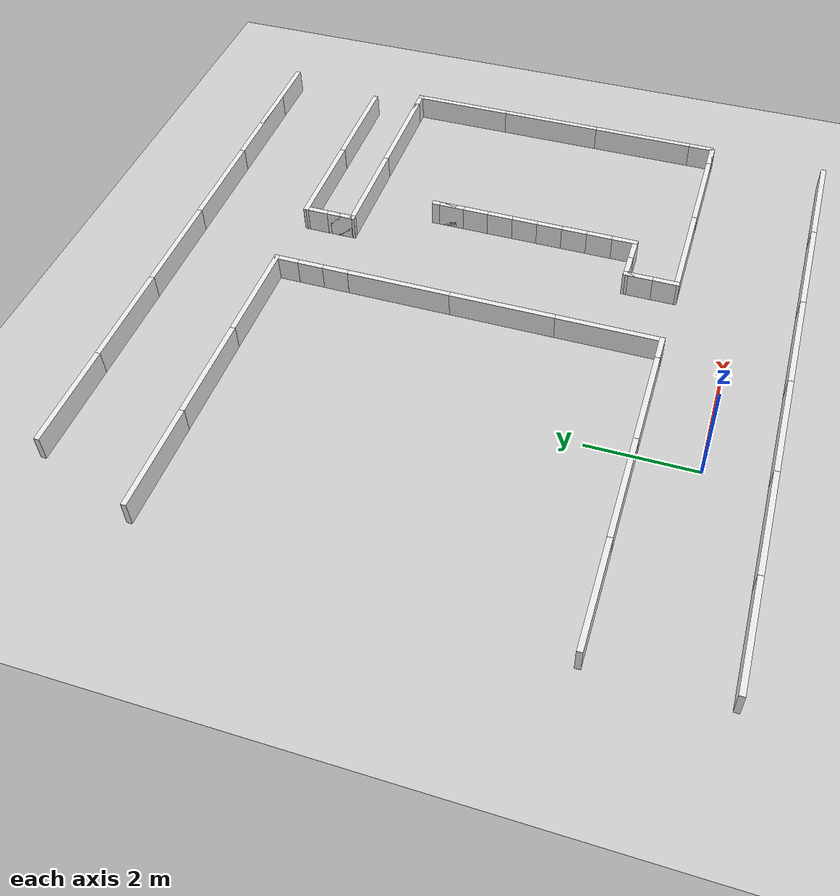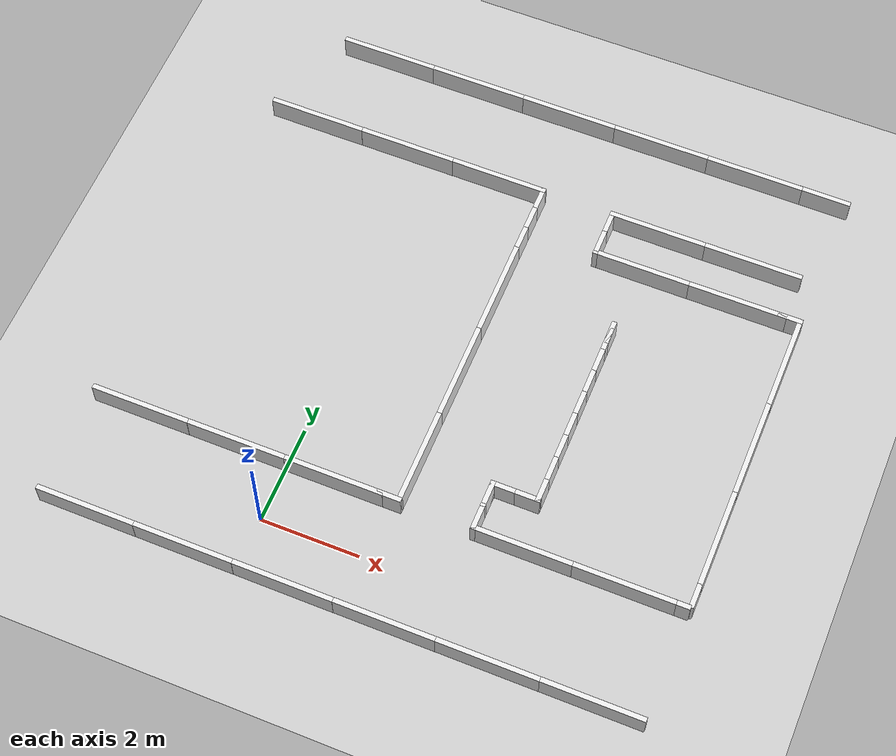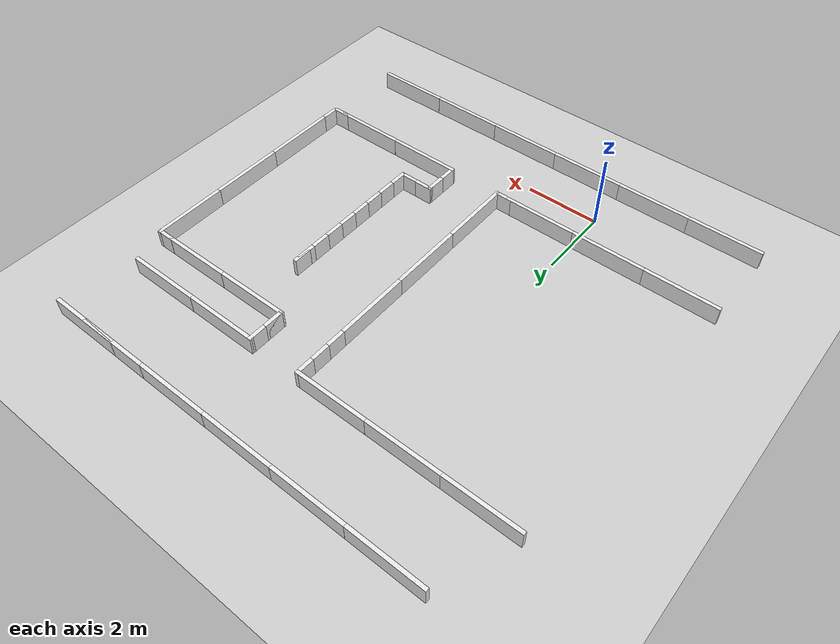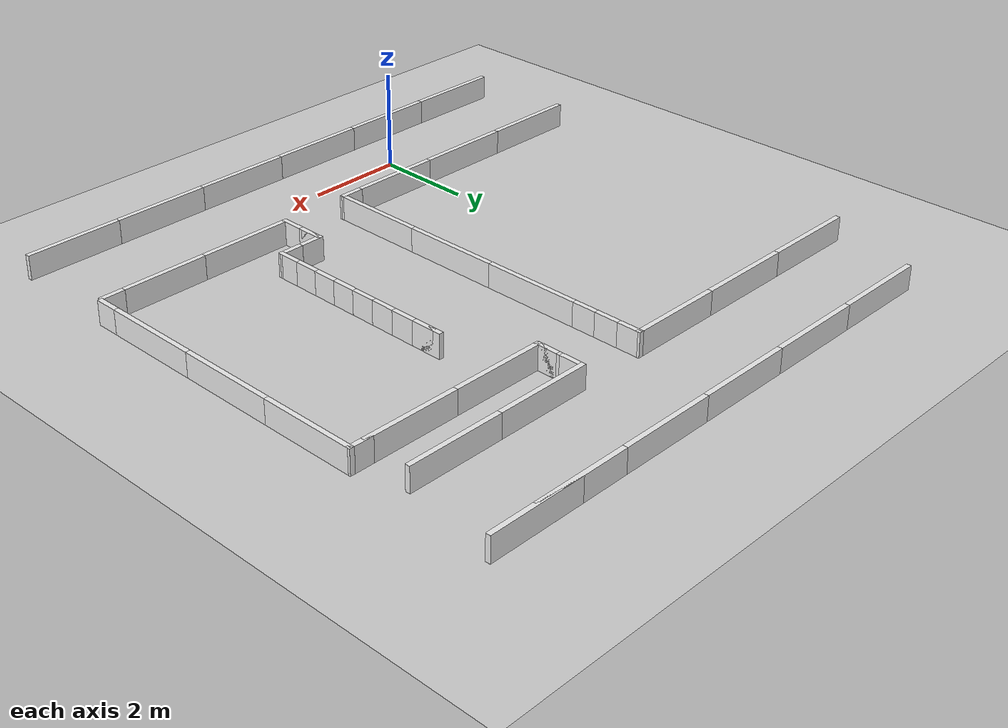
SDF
<sdf version="1.4">
 <world name="default">
  <include><uri>model://ground_plane</uri></include>
  <model name="wall_corridor">
   <pose>-3.0 1.145 0.25 0 0 1.57</pose>
   <link name="link">
    <inertial>
     <mass>10</mass>
     <inertia><ixx>1</ixx><ixy>0</ixy><ixz>0</ixz><iyy>1</iyy><iyz>0</iyz><izz>1</izz></inertia>
    </inertial>
    <collision name="collision"><geometry><box><size>0.1 2.0 0.5</size></box></geometry></collision>
    <visual name="visual">
     <geometry><box><size>0.1 2.0 0.5</size></box></geometry>
     <material>
      <script><uri>file://media/materials/scripts/gazebo.material</uri><name>Gazebo/White</name></script>
     </material>
    </visual>
    <velocity_decay><linear>0</linear><angular>0</angular></velocity_decay>
   </link>
   <static>1</static>
  </model>
  <model name="wall_corridor">
   <pose>-1.0 1.145 0.25 0 0 1.57</pose>
   <link name="link">
    <inertial>
     <mass>10</mass>
     <inertia><ixx>1</ixx><ixy>0</ixy><ixz>0</ixz><iyy>1</iyy><iyz>0</iyz><izz>1</izz></inertia>
    </inertial>
    <collision name="collision"><geometry><box><size>0.1 2.0 0.5</size></box></geometry></collision>
    <visual name="visual">
     <geometry><box><size>0.1 2.0 0.5</size></box></geometry>
     <material>
      <script><uri>file://media/materials/scripts/gazebo.material</uri><name>Gazebo/White</name></script>
     </material>
    </visual>
    <velocity_decay><linear>0</linear><angular>0</angular></velocity_decay>
   </link>
   <static>1</static>
  </model>
  <model name="wall_corridor">
   <pose>1.0 1.145 0.25 0 0 1.57</pose>
   <link name="link">
    <inertial>
     <mass>10</mass>
     <inertia><ixx>1</ixx><ixy>0</ixy><ixz>0</ixz><iyy>1</iyy><iyz>0</iyz><izz>1</izz></inertia>
    </inertial>
    <collision name="collision"><geometry><box><size>0.1 2.0 0.5</size></box></geometry></collision>
    <visual name="visual">
     <geometry><box><size>0.1 2.0 0.5</size></box></geometry>
     <material>
      <script><uri>file://media/materials/scripts/gazebo.material</uri><name>Gazebo/White</name></script>
     </material>
    </visual>
    <velocity_decay><linear>0</linear><angular>0</angular></velocity_decay>
   </link>
   <static>1</static>
  </model>
  <model name="wall">
   <pose>2.12 1.145 0.25 0 0 1.57</pose>
   <link name="link">
    <inertial>
     <mass>10</mass>
     <inertia><ixx>1</ixx><ixy>0</ixy><ixz>0</ixz><iyy>1</iyy><iyz>0</iyz><izz>1</izz></inertia>
    </inertial>
    <collision name="collision"><geometry><box><size>0.1 0.5 0.5</size></box></geometry></collision>
    <visual name="visual">
     <geometry><box><size>0.1 0.5 0.5</size></box></geometry>
     <material>
      <script><uri>file://media/materials/scripts/gazebo.material</uri><name>Gazebo/White</name></script>
     </material>
    </visual>
    <velocity_decay><linear>0</linear><angular>0</angular></velocity_decay>
   </link>
   <static>1</static>
  </model>
  <model name="wall_corridor">
   <pose>4.75 1.145 0.25 0 0 1.57</pose>
   <link name="link">
    <inertial>
     <mass>10</mass>
     <inertia><ixx>1</ixx><ixy>0</ixy><ixz>0</ixz><iyy>1</iyy><iyz>0</iyz><izz>1</izz></inertia>
    </inertial>
    <collision name="collision"><geometry><box><size>0.1 2.0 0.5</size></box></geometry></collision>
    <visual name="visual">
     <geometry><box><size>0.1 2.0 0.5</size></box></geometry>
     <material>
      <script><uri>file://media/materials/scripts/gazebo.material</uri><name>Gazebo/White</name></script>
     </material>
    </visual>
    <velocity_decay><linear>0</linear><angular>0</angular></velocity_decay>
   </link>
   <static>1</static>
  </model>
  <model name="wall_corridor">
   <pose>6.75 1.145 0.25 0 0 1.57</pose>
   <link name="link">
    <inertial>
     <mass>10</mass>
     <inertia><ixx>1</ixx><ixy>0</ixy><ixz>0</ixz><iyy>1</iyy><iyz>0</iyz><izz>1</izz></inertia>
    </inertial>
    <collision name="collision"><geometry><box><size>0.1 2.0 0.5</size></box></geometry></collision>
    <visual name="visual">
     <geometry><box><size>0.1 2.0 0.5</size></box></geometry>
     <material>
      <script><uri>file://media/materials/scripts/gazebo.material</uri><name>Gazebo/White</name></script>
     </material>
    </visual>
    <velocity_decay><linear>0</linear><angular>0</angular></velocity_decay>
   </link>
   <static>1</static>
  </model>
  <model name="wall">
   <pose>7.77 1.145 0.25 0 0 1.57</pose>
   <link name="link">
    <inertial>
     <mass>10</mass>
     <inertia><ixx>1</ixx><ixy>0</ixy><ixz>0</ixz><iyy>1</iyy><iyz>0</iyz><izz>1</izz></inertia>
    </inertial>
    <collision name="collision"><geometry><box><size>0.1 0.5 0.5</size></box></geometry></collision>
    <visual name="visual">
     <geometry><box><size>0.1 0.5 0.5</size></box></geometry>
     <material>
      <script><uri>file://media/materials/scripts/gazebo.material</uri><name>Gazebo/White</name></script>
     </material>
    </visual>
    <velocity_decay><linear>0</linear><angular>0</angular></velocity_decay>
   </link>
   <static>1</static>
  </model>
  <model name="wall_corridor">
   <pose>-3.0 -1.145 0.25 0 0 1.57</pose>
   <link name="link">
    <inertial>
     <mass>10</mass>
     <inertia><ixx>1</ixx><ixy>0</ixy><ixz>0</ixz><iyy>1</iyy><iyz>0</iyz><izz>1</izz></inertia>
    </inertial>
    <collision name="collision"><geometry><box><size>0.1 2.0 0.5</size></box></geometry></collision>
    <visual name="visual">
     <geometry><box><size>0.1 2.0 0.5</size></box></geometry>
     <material>
      <script><uri>file://media/materials/scripts/gazebo.material</uri><name>Gazebo/White</name></script>
     </material>
    </visual>
    <velocity_decay><linear>0</linear><angular>0</angular></velocity_decay>
   </link>
   <static>1</static>
  </model>
  <model name="wall_corridor">
   <pose>-1.0 -1.145 0.25 0 0 1.57</pose>
   <link name="link">
    <inertial>
     <mass>10</mass>
     <inertia><ixx>1</ixx><ixy>0</ixy><ixz>0</ixz><iyy>1</iyy><iyz>0</iyz><izz>1</izz></inertia>
    </inertial>
    <collision name="collision"><geometry><box><size>0.1 2.0 0.5</size></box></geometry></collision>
    <visual name="visual">
     <geometry><box><size>0.1 2.0 0.5</size></box></geometry>
     <material>
      <script><uri>file://media/materials/scripts/gazebo.material</uri><name>Gazebo/White</name></script>
     </material>
    </visual>
    <velocity_decay><linear>0</linear><angular>0</angular></velocity_decay>
   </link>
   <static>1</static>
  </model>
  <model name="wall_corridor">
   <pose>1.0 -1.1455 0.25 0 0 1.57</pose>
   <link name="link">
    <inertial>
     <mass>10</mass>
     <inertia><ixx>1</ixx><ixy>0</ixy><ixz>0</ixz><iyy>1</iyy><iyz>0</iyz><izz>1</izz></inertia>
    </inertial>
    <collision name="collision"><geometry><box><size>0.1 2.0 0.5</size></box></geometry></collision>
    <visual name="visual">
     <geometry><box><size>0.1 2.0 0.5</size></box></geometry>
     <material>
      <script><uri>file://media/materials/scripts/gazebo.material</uri><name>Gazebo/White</name></script>
     </material>
    </visual>
    <velocity_decay><linear>0</linear><angular>0</angular></velocity_decay>
   </link>
   <static>1</static>
  </model>
  <model name="wall_corridor">
   <pose>3.0 -1.145 0.25 0 0 1.57</pose>
   <link name="link">
    <inertial>
     <mass>10</mass>
     <inertia><ixx>1</ixx><ixy>0</ixy><ixz>0</ixz><iyy>1</iyy><iyz>0</iyz><izz>1</izz></inertia>
    </inertial>
    <collision name="collision"><geometry><box><size>0.1 2.0 0.5</size></box></geometry></collision>
    <visual name="visual">
     <geometry><box><size>0.1 2.0 0.5</size></box></geometry>
     <material>
      <script><uri>file://media/materials/scripts/gazebo.material</uri><name>Gazebo/White</name></script>
     </material>
    </visual>
    <velocity_decay><linear>0</linear><angular>0</angular></velocity_decay>
   </link>
   <static>1</static>
  </model>
  <model name="wall_corridor">
   <pose>5.0 -1.145 0.25 0 0 1.57</pose>
   <link name="link">
    <inertial>
     <mass>10</mass>
     <inertia><ixx>1</ixx><ixy>0</ixy><ixz>0</ixz><iyy>1</iyy><iyz>0</iyz><izz>1</izz></inertia>
    </inertial>
    <collision name="collision"><geometry><box><size>0.1 2.0 0.5</size></box></geometry></collision>
    <visual name="visual">
     <geometry><box><size>0.1 2.0 0.5</size></box></geometry>
     <material>
      <script><uri>file://media/materials/scripts/gazebo.material</uri><name>Gazebo/White</name></script>
     </material>
    </visual>
    <velocity_decay><linear>0</linear><angular>0</angular></velocity_decay>
   </link>
   <static>1</static>
  </model>
  <model name="wall_corridor">
   <pose>7.0 -1.145 0.25 0 0 1.57</pose>
   <link name="link">
    <inertial>
     <mass>10</mass>
     <inertia><ixx>1</ixx><ixy>0</ixy><ixz>0</ixz><iyy>1</iyy><iyz>0</iyz><izz>1</izz></inertia>
    </inertial>
    <collision name="collision"><geometry><box><size>0.1 2.0 0.5</size></box></geometry></collision>
    <visual name="visual">
     <geometry><box><size>0.1 2.0 0.5</size></box></geometry>
     <material>
      <script><uri>file://media/materials/scripts/gazebo.material</uri><name>Gazebo/White</name></script>
     </material>
    </visual>
    <velocity_decay><linear>0</linear><angular>0</angular></velocity_decay>
   </link>
   <static>1</static>
  </model>
  <model name="wall_corridor">
   <pose>2.32 2.095 0.25 0 0 0</pose>
   <link name="link">
    <inertial>
     <mass>10</mass>
     <inertia><ixx>1</ixx><ixy>0</ixy><ixz>0</ixz><iyy>1</iyy><iyz>0</iyz><izz>1</izz></inertia>
    </inertial>
    <collision name="collision"><geometry><box><size>0.1 2.0 0.5</size></box></geometry></collision>
    <visual name="visual">
     <geometry><box><size>0.1 2.0 0.5</size></box></geometry>
     <material>
      <script><uri>file://media/materials/scripts/gazebo.material</uri><name>Gazebo/White</name></script>
     </material>
    </visual>
    <velocity_decay><linear>0</linear><angular>0</angular></velocity_decay>
   </link>
   <static>1</static>
  </model>
  <model name="wall_corridor">
   <pose>2.32 4.095 0.25 0 0 0</pose>
   <link name="link">
    <inertial>
     <mass>10</mass>
     <inertia><ixx>1</ixx><ixy>0</ixy><ixz>0</ixz><iyy>1</iyy><iyz>0</iyz><izz>1</izz></inertia>
    </inertial>
    <collision name="collision"><geometry><box><size>0.1 2.0 0.5</size></box></geometry></collision>
    <visual name="visual">
     <geometry><box><size>0.1 2.0 0.5</size></box></geometry>
     <material>
      <script><uri>file://media/materials/scripts/gazebo.material</uri><name>Gazebo/White</name></script>
     </material>
    </visual>
    <velocity_decay><linear>0</linear><angular>0</angular></velocity_decay>
   </link>
   <static>1</static>
  </model>
  <model name="wall_corridor">
   <pose>2.32 6.095 0.25 0 0 0</pose>
   <link name="link">
    <inertial>
     <mass>10</mass>
     <inertia><ixx>1</ixx><ixy>0</ixy><ixz>0</ixz><iyy>1</iyy><iyz>0</iyz><izz>1</izz></inertia>
    </inertial>
    <collision name="collision"><geometry><box><size>0.1 2.0 0.5</size></box></geometry></collision>
    <visual name="visual">
     <geometry><box><size>0.1 2.0 0.5</size></box></geometry>
     <material>
      <script><uri>file://media/materials/scripts/gazebo.material</uri><name>Gazebo/White</name></script>
     </material>
    </visual>
    <velocity_decay><linear>0</linear><angular>0</angular></velocity_decay>
   </link>
   <static>1</static>
  </model>
  <model name="wall">
   <pose>2.32 7.345 0.25 0 0 0</pose>
   <link name="link">
    <inertial>
     <mass>10</mass>
     <inertia><ixx>1</ixx><ixy>0</ixy><ixz>0</ixz><iyy>1</iyy><iyz>0</iyz><izz>1</izz></inertia>
    </inertial>
    <collision name="collision"><geometry><box><size>0.1 0.5 0.5</size></box></geometry></collision>
    <visual name="visual">
     <geometry><box><size>0.1 0.5 0.5</size></box></geometry>
     <material>
      <script><uri>file://media/materials/scripts/gazebo.material</uri><name>Gazebo/White</name></script>
     </material>
    </visual>
    <velocity_decay><linear>0</linear><angular>0</angular></velocity_decay>
   </link>
   <static>1</static>
  </model>
  <model name="wall">
   <pose>2.32 7.845 0.25 0 0 0</pose>
   <link name="link">
    <inertial>
     <mass>10</mass>
     <inertia><ixx>1</ixx><ixy>0</ixy><ixz>0</ixz><iyy>1</iyy><iyz>0</iyz><izz>1</izz></inertia>
    </inertial>
    <collision name="collision"><geometry><box><size>0.1 0.5 0.5</size></box></geometry></collision>
    <visual name="visual">
     <geometry><box><size>0.1 0.5 0.5</size></box></geometry>
     <material>
      <script><uri>file://media/materials/scripts/gazebo.material</uri><name>Gazebo/White</name></script>
     </material>
    </visual>
    <velocity_decay><linear>0</linear><angular>0</angular></velocity_decay>
   </link>
   <static>1</static>
  </model>
  <model name="wall">
   <pose>2.32 8.345 0.25 0 0 0</pose>
   <link name="link">
    <inertial>
     <mass>10</mass>
     <inertia><ixx>1</ixx><ixy>0</ixy><ixz>0</ixz><iyy>1</iyy><iyz>0</iyz><izz>1</izz></inertia>
    </inertial>
    <collision name="collision"><geometry><box><size>0.1 0.5 0.5</size></box></geometry></collision>
    <visual name="visual">
     <geometry><box><size>0.1 0.5 0.5</size></box></geometry>
     <material>
      <script><uri>file://media/materials/scripts/gazebo.material</uri><name>Gazebo/White</name></script>
     </material>
    </visual>
    <velocity_decay><linear>0</linear><angular>0</angular></velocity_decay>
   </link>
   <static>1</static>
  </model>
  <model name="wall">
   <pose>3.8 1.345 0.25 0 0 0</pose>
   <link name="link">
    <inertial>
     <mass>10</mass>
     <inertia><ixx>1</ixx><ixy>0</ixy><ixz>0</ixz><iyy>1</iyy><iyz>0</iyz><izz>1</izz></inertia>
    </inertial>
    <collision name="collision"><geometry><box><size>0.1 0.5 0.5</size></box></geometry></collision>
    <visual name="visual">
     <geometry><box><size>0.1 0.5 0.5</size></box></geometry>
     <material>
      <script><uri>file://media/materials/scripts/gazebo.material</uri><name>Gazebo/White</name></script>
     </material>
    </visual>
    <velocity_decay><linear>0</linear><angular>0</angular></velocity_decay>
   </link>
   <static>1</static>
  </model>
  <model name="wall">
   <pose>3.8 1.845 0.25 0 0 0</pose>
   <link name="link">
    <inertial>
     <mass>10</mass>
     <inertia><ixx>1</ixx><ixy>0</ixy><ixz>0</ixz><iyy>1</iyy><iyz>0</iyz><izz>1</izz></inertia>
    </inertial>
    <collision name="collision"><geometry><box><size>0.1 0.5 0.5</size></box></geometry></collision>
    <visual name="visual">
     <geometry><box><size>0.1 0.5 0.5</size></box></geometry>
     <material>
      <script><uri>file://media/materials/scripts/gazebo.material</uri><name>Gazebo/White</name></script>
     </material>
    </visual>
    <velocity_decay><linear>0</linear><angular>0</angular></velocity_decay>
   </link>
   <static>1</static>
  </model>
  <model name="wall">
   <pose>3.8 1.91 0.25 0 0 0</pose>
   <link name="link">
    <inertial>
     <mass>10</mass>
     <inertia><ixx>1</ixx><ixy>0</ixy><ixz>0</ixz><iyy>1</iyy><iyz>0</iyz><izz>1</izz></inertia>
    </inertial>
    <collision name="collision"><geometry><box><size>0.1 0.5 0.5</size></box></geometry></collision>
    <visual name="visual">
     <geometry><box><size>0.1 0.5 0.5</size></box></geometry>
     <material>
      <script><uri>file://media/materials/scripts/gazebo.material</uri><name>Gazebo/White</name></script>
     </material>
    </visual>
    <velocity_decay><linear>0</linear><angular>0</angular></velocity_decay>
   </link>
   <static>1</static>
  </model>
  <model name="wall">
   <pose>4.0 2.11 0.25 0 0 1.57</pose>
   <link name="link">
    <inertial>
     <mass>10</mass>
     <inertia><ixx>1</ixx><ixy>0</ixy><ixz>0</ixz><iyy>1</iyy><iyz>0</iyz><izz>1</izz></inertia>
    </inertial>
    <collision name="collision"><geometry><box><size>0.1 0.5 0.5</size></box></geometry></collision>
    <visual name="visual">
     <geometry><box><size>0.1 0.5 0.5</size></box></geometry>
     <material>
      <script><uri>file://media/materials/scripts/gazebo.material</uri><name>Gazebo/White</name></script>
     </material>
    </visual>
    <velocity_decay><linear>0</linear><angular>0</angular></velocity_decay>
   </link>
   <static>1</static>
  </model>
  <model name="wall">
   <pose>4.5 2.11 0.25 0 0 1.57</pose>
   <link name="link">
    <inertial>
     <mass>10</mass>
     <inertia><ixx>1</ixx><ixy>0</ixy><ixz>0</ixz><iyy>1</iyy><iyz>0</iyz><izz>1</izz></inertia>
    </inertial>
    <collision name="collision"><geometry><box><size>0.1 0.5 0.5</size></box></geometry></collision>
    <visual name="visual">
     <geometry><box><size>0.1 0.5 0.5</size></box></geometry>
     <material>
      <script><uri>file://media/materials/scripts/gazebo.material</uri><name>Gazebo/White</name></script>
     </material>
    </visual>
    <velocity_decay><linear>0</linear><angular>0</angular></velocity_decay>
   </link>
   <static>1</static>
  </model>
  <model name="wall">
   <pose>4.7 2.31 0.25 0 0 0</pose>
   <link name="link">
    <inertial>
     <mass>10</mass>
     <inertia><ixx>1</ixx><ixy>0</ixy><ixz>0</ixz><iyy>1</iyy><iyz>0</iyz><izz>1</izz></inertia>
    </inertial>
    <collision name="collision"><geometry><box><size>0.1 0.5 0.5</size></box></geometry></collision>
    <visual name="visual">
     <geometry><box><size>0.1 0.5 0.5</size></box></geometry>
     <material>
      <script><uri>file://media/materials/scripts/gazebo.material</uri><name>Gazebo/White</name></script>
     </material>
    </visual>
    <velocity_decay><linear>0</linear><angular>0</angular></velocity_decay>
   </link>
   <static>1</static>
  </model>
  <model name="wall">
   <pose>4.7 2.81 0.25 0 0 0</pose>
   <link name="link">
    <inertial>
     <mass>10</mass>
     <inertia><ixx>1</ixx><ixy>0</ixy><ixz>0</ixz><iyy>1</iyy><iyz>0</iyz><izz>1</izz></inertia>
    </inertial>
    <collision name="collision"><geometry><box><size>0.1 0.5 0.5</size></box></geometry></collision>
    <visual name="visual">
     <geometry><box><size>0.1 0.5 0.5</size></box></geometry>
     <material>
      <script><uri>file://media/materials/scripts/gazebo.material</uri><name>Gazebo/White</name></script>
     </material>
    </visual>
    <velocity_decay><linear>0</linear><angular>0</angular></velocity_decay>
   </link>
   <static>1</static>
  </model>
  <model name="wall">
   <pose>4.7 3.31 0.25 0 0 0</pose>
   <link name="link">
    <inertial>
     <mass>10</mass>
     <inertia><ixx>1</ixx><ixy>0</ixy><ixz>0</ixz><iyy>1</iyy><iyz>0</iyz><izz>1</izz></inertia>
    </inertial>
    <collision name="collision"><geometry><box><size>0.1 0.5 0.5</size></box></geometry></collision>
    <visual name="visual">
     <geometry><box><size>0.1 0.5 0.5</size></box></geometry>
     <material>
      <script><uri>file://media/materials/scripts/gazebo.material</uri><name>Gazebo/White</name></script>
     </material>
    </visual>
    <velocity_decay><linear>0</linear><angular>0</angular></velocity_decay>
   </link>
   <static>1</static>
  </model>
  <model name="wall">
   <pose>4.7 3.81 0.25 0 0 0</pose>
   <link name="link">
    <inertial>
     <mass>10</mass>
     <inertia><ixx>1</ixx><ixy>0</ixy><ixz>0</ixz><iyy>1</iyy><iyz>0</iyz><izz>1</izz></inertia>
    </inertial>
    <collision name="collision"><geometry><box><size>0.1 0.5 0.5</size></box></geometry></collision>
    <visual name="visual">
     <geometry><box><size>0.1 0.5 0.5</size></box></geometry>
     <material>
      <script><uri>file://media/materials/scripts/gazebo.material</uri><name>Gazebo/White</name></script>
     </material>
    </visual>
    <velocity_decay><linear>0</linear><angular>0</angular></velocity_decay>
   </link>
   <static>1</static>
  </model>
  <model name="wall">
   <pose>4.7 4.31 0.25 0 0 0</pose>
   <link name="link">
    <inertial>
     <mass>10</mass>
     <inertia><ixx>1</ixx><ixy>0</ixy><ixz>0</ixz><iyy>1</iyy><iyz>0</iyz><izz>1</izz></inertia>
    </inertial>
    <collision name="collision"><geometry><box><size>0.1 0.5 0.5</size></box></geometry></collision>
    <visual name="visual">
     <geometry><box><size>0.1 0.5 0.5</size></box></geometry>
     <material>
      <script><uri>file://media/materials/scripts/gazebo.material</uri><name>Gazebo/White</name></script>
     </material>
    </visual>
    <velocity_decay><linear>0</linear><angular>0</angular></velocity_decay>
   </link>
   <static>1</static>
  </model>
  <model name="wall">
   <pose>4.7 4.81 0.25 0 0 0</pose>
   <link name="link">
    <inertial>
     <mass>10</mass>
     <inertia><ixx>1</ixx><ixy>0</ixy><ixz>0</ixz><iyy>1</iyy><iyz>0</iyz><izz>1</izz></inertia>
    </inertial>
    <collision name="collision"><geometry><box><size>0.1 0.5 0.5</size></box></geometry></collision>
    <visual name="visual">
     <geometry><box><size>0.1 0.5 0.5</size></box></geometry>
     <material>
      <script><uri>file://media/materials/scripts/gazebo.material</uri><name>Gazebo/White</name></script>
     </material>
    </visual>
    <velocity_decay><linear>0</linear><angular>0</angular></velocity_decay>
   </link>
   <static>1</static>
  </model>
  <model name="wall">
   <pose>4.7 5.31 0.25 0 0 0</pose>
   <link name="link">
    <inertial>
     <mass>10</mass>
     <inertia><ixx>1</ixx><ixy>0</ixy><ixz>0</ixz><iyy>1</iyy><iyz>0</iyz><izz>1</izz></inertia>
    </inertial>
    <collision name="collision"><geometry><box><size>0.1 0.5 0.5</size></box></geometry></collision>
    <visual name="visual">
     <geometry><box><size>0.1 0.5 0.5</size></box></geometry>
     <material>
      <script><uri>file://media/materials/scripts/gazebo.material</uri><name>Gazebo/White</name></script>
     </material>
    </visual>
    <velocity_decay><linear>0</linear><angular>0</angular></velocity_decay>
   </link>
   <static>1</static>
  </model>
  <model name="wall">
   <pose>4.7 5.81 0.25 0 0 0</pose>
   <link name="link">
    <inertial>
     <mass>10</mass>
     <inertia><ixx>1</ixx><ixy>0</ixy><ixz>0</ixz><iyy>1</iyy><iyz>0</iyz><izz>1</izz></inertia>
    </inertial>
    <collision name="collision"><geometry><box><size>0.1 0.5 0.5</size></box></geometry></collision>
    <visual name="visual">
     <geometry><box><size>0.1 0.5 0.5</size></box></geometry>
     <material>
      <script><uri>file://media/materials/scripts/gazebo.material</uri><name>Gazebo/White</name></script>
     </material>
    </visual>
    <velocity_decay><linear>0</linear><angular>0</angular></velocity_decay>
   </link>
   <static>1</static>
  </model>
  <model name="wall">
   <pose>4.7 5.965 0.25 0 0 0</pose>
   <link name="link">
    <inertial>
     <mass>10</mass>
     <inertia><ixx>1</ixx><ixy>0</ixy><ixz>0</ixz><iyy>1</iyy><iyz>0</iyz><izz>1</izz></inertia>
    </inertial>
    <collision name="collision"><geometry><box><size>0.1 0.5 0.5</size></box></geometry></collision>
    <visual name="visual">
     <geometry><box><size>0.1 0.5 0.5</size></box></geometry>
     <material>
      <script><uri>file://media/materials/scripts/gazebo.material</uri><name>Gazebo/White</name></script>
     </material>
    </visual>
    <velocity_decay><linear>0</linear><angular>0</angular></velocity_decay>
   </link>
   <static>1</static>
  </model>
  <model name="wall">
   <pose>3.8 7.78 0.25 0 0 0</pose>
   <link name="link">
    <inertial>
     <mass>10</mass>
     <inertia><ixx>1</ixx><ixy>0</ixy><ixz>0</ixz><iyy>1</iyy><iyz>0</iyz><izz>1</izz></inertia>
    </inertial>
    <collision name="collision"><geometry><box><size>0.1 0.5 0.5</size></box></geometry></collision>
    <visual name="visual">
     <geometry><box><size>0.1 0.5 0.5</size></box></geometry>
     <material>
      <script><uri>file://media/materials/scripts/gazebo.material</uri><name>Gazebo/White</name></script>
     </material>
    </visual>
    <velocity_decay><linear>0</linear><angular>0</angular></velocity_decay>
   </link>
   <static>1</static>
  </model>
  <model name="wall">
   <pose>3.8 7.845 0.25 0 0 0</pose>
   <link name="link">
    <inertial>
     <mass>10</mass>
     <inertia><ixx>1</ixx><ixy>0</ixy><ixz>0</ixz><iyy>1</iyy><iyz>0</iyz><izz>1</izz></inertia>
    </inertial>
    <collision name="collision"><geometry><box><size>0.1 0.5 0.5</size></box></geometry></collision>
    <visual name="visual">
     <geometry><box><size>0.1 0.5 0.5</size></box></geometry>
     <material>
      <script><uri>file://media/materials/scripts/gazebo.material</uri><name>Gazebo/White</name></script>
     </material>
    </visual>
    <velocity_decay><linear>0</linear><angular>0</angular></velocity_decay>
   </link>
   <static>1</static>
  </model>
  <model name="wall">
   <pose>3.8 8.345 0.25 0 0 0</pose>
   <link name="link">
    <inertial>
     <mass>10</mass>
     <inertia><ixx>1</ixx><ixy>0</ixy><ixz>0</ixz><iyy>1</iyy><iyz>0</iyz><izz>1</izz></inertia>
    </inertial>
    <collision name="collision"><geometry><box><size>0.1 0.5 0.5</size></box></geometry></collision>
    <visual name="visual">
     <geometry><box><size>0.1 0.5 0.5</size></box></geometry>
     <material>
      <script><uri>file://media/materials/scripts/gazebo.material</uri><name>Gazebo/White</name></script>
     </material>
    </visual>
    <velocity_decay><linear>0</linear><angular>0</angular></velocity_decay>
   </link>
   <static>1</static>
  </model>
  <model name="wall_corridor">
   <pose>4.75 7.58 0.25 0 0 1.57</pose>
   <link name="link">
    <inertial>
     <mass>10</mass>
     <inertia><ixx>1</ixx><ixy>0</ixy><ixz>0</ixz><iyy>1</iyy><iyz>0</iyz><izz>1</izz></inertia>
    </inertial>
    <collision name="collision"><geometry><box><size>0.1 2.0 0.5</size></box></geometry></collision>
    <visual name="visual">
     <geometry><box><size>0.1 2.0 0.5</size></box></geometry>
     <material>
      <script><uri>file://media/materials/scripts/gazebo.material</uri><name>Gazebo/White</name></script>
     </material>
    </visual>
    <velocity_decay><linear>0</linear><angular>0</angular></velocity_decay>
   </link>
   <static>1</static>
  </model>
  <model name="wall_corridor">
   <pose>6.75 7.58 0.25 0 0 1.57</pose>
   <link name="link">
    <inertial>
     <mass>10</mass>
     <inertia><ixx>1</ixx><ixy>0</ixy><ixz>0</ixz><iyy>1</iyy><iyz>0</iyz><izz>1</izz></inertia>
    </inertial>
    <collision name="collision"><geometry><box><size>0.1 2.0 0.5</size></box></geometry></collision>
    <visual name="visual">
     <geometry><box><size>0.1 2.0 0.5</size></box></geometry>
     <material>
      <script><uri>file://media/materials/scripts/gazebo.material</uri><name>Gazebo/White</name></script>
     </material>
    </visual>
    <velocity_decay><linear>0</linear><angular>0</angular></velocity_decay>
   </link>
   <static>1</static>
  </model>
  <model name="wall">
   <pose>7.82 7.58 0.25 0 0 1.57</pose>
   <link name="link">
    <inertial>
     <mass>10</mass>
     <inertia><ixx>1</ixx><ixy>0</ixy><ixz>0</ixz><iyy>1</iyy><iyz>0</iyz><izz>1</izz></inertia>
    </inertial>
    <collision name="collision"><geometry><box><size>0.1 0.5 0.5</size></box></geometry></collision>
    <visual name="visual">
     <geometry><box><size>0.1 0.5 0.5</size></box></geometry>
     <material>
      <script><uri>file://media/materials/scripts/gazebo.material</uri><name>Gazebo/White</name></script>
     </material>
    </visual>
    <velocity_decay><linear>0</linear><angular>0</angular></velocity_decay>
   </link>
   <static>1</static>
  </model>
  <model name="wall_corridor">
   <pose>8.02 6.63 0.25 0 0 0</pose>
   <link name="link">
    <inertial>
     <mass>10</mass>
     <inertia><ixx>1</ixx><ixy>0</ixy><ixz>0</ixz><iyy>1</iyy><iyz>0</iyz><izz>1</izz></inertia>
    </inertial>
    <collision name="collision"><geometry><box><size>0.1 2.0 0.5</size></box></geometry></collision>
    <visual name="visual">
     <geometry><box><size>0.1 2.0 0.5</size></box></geometry>
     <material>
      <script><uri>file://media/materials/scripts/gazebo.material</uri><name>Gazebo/White</name></script>
     </material>
    </visual>
    <velocity_decay><linear>0</linear><angular>0</angular></velocity_decay>
   </link>
   <static>1</static>
  </model>
  <model name="wall_corridor">
   <pose>8.02 4.63 0.25 0 0 0</pose>
   <link name="link">
    <inertial>
     <mass>10</mass>
     <inertia><ixx>1</ixx><ixy>0</ixy><ixz>0</ixz><iyy>1</iyy><iyz>0</iyz><izz>1</izz></inertia>
    </inertial>
    <collision name="collision"><geometry><box><size>0.1 2.0 0.5</size></box></geometry></collision>
    <visual name="visual">
     <geometry><box><size>0.1 2.0 0.5</size></box></geometry>
     <material>
      <script><uri>file://media/materials/scripts/gazebo.material</uri><name>Gazebo/White</name></script>
     </material>
    </visual>
    <velocity_decay><linear>0</linear><angular>0</angular></velocity_decay>
   </link>
   <static>1</static>
  </model>
  <model name="wall_corridor">
   <pose>8.02 2.63 0.25 0 0 0</pose>
   <link name="link">
    <inertial>
     <mass>10</mass>
     <inertia><ixx>1</ixx><ixy>0</ixy><ixz>0</ixz><iyy>1</iyy><iyz>0</iyz><izz>1</izz></inertia>
    </inertial>
    <collision name="collision"><geometry><box><size>0.1 2.0 0.5</size></box></geometry></collision>
    <visual name="visual">
     <geometry><box><size>0.1 2.0 0.5</size></box></geometry>
     <material>
      <script><uri>file://media/materials/scripts/gazebo.material</uri><name>Gazebo/White</name></script>
     </material>
    </visual>
    <velocity_decay><linear>0</linear><angular>0</angular></velocity_decay>
   </link>
   <static>1</static>
  </model>
  <model name="wall">
   <pose>8.02 1.395 0.25 0 0 0</pose>
   <link name="link">
    <inertial>
     <mass>10</mass>
     <inertia><ixx>1</ixx><ixy>0</ixy><ixz>0</ixz><iyy>1</iyy><iyz>0</iyz><izz>1</izz></inertia>
    </inertial>
    <collision name="collision"><geometry><box><size>0.1 0.5 0.5</size></box></geometry></collision>
    <visual name="visual">
     <geometry><box><size>0.1 0.5 0.5</size></box></geometry>
     <material>
      <script><uri>file://media/materials/scripts/gazebo.material</uri><name>Gazebo/White</name></script>
     </material>
    </visual>
    <velocity_decay><linear>0</linear><angular>0</angular></velocity_decay>
   </link>
   <static>1</static>
  </model>
  <model name="wall_corridor">
   <pose>4.75 8.545 0.25 0 0 1.57</pose>
   <link name="link">
    <inertial>
     <mass>10</mass>
     <inertia><ixx>1</ixx><ixy>0</ixy><ixz>0</ixz><iyy>1</iyy><iyz>0</iyz><izz>1</izz></inertia>
    </inertial>
    <collision name="collision"><geometry><box><size>0.1 2.0 0.5</size></box></geometry></collision>
    <visual name="visual">
     <geometry><box><size>0.1 2.0 0.5</size></box></geometry>
     <material>
      <script><uri>file://media/materials/scripts/gazebo.material</uri><name>Gazebo/White</name></script>
     </material>
    </visual>
    <velocity_decay><linear>0</linear><angular>0</angular></velocity_decay>
   </link>
   <static>1</static>
  </model>
  <model name="wall_corridor">
   <pose>6.75 8.545 0.25 0 0 1.57</pose>
   <link name="link">
    <inertial>
     <mass>10</mass>
     <inertia><ixx>1</ixx><ixy>0</ixy><ixz>0</ixz><iyy>1</iyy><iyz>0</iyz><izz>1</izz></inertia>
    </inertial>
    <collision name="collision"><geometry><box><size>0.1 2.0 0.5</size></box></geometry></collision>
    <visual name="visual">
     <geometry><box><size>0.1 2.0 0.5</size></box></geometry>
     <material>
      <script><uri>file://media/materials/scripts/gazebo.material</uri><name>Gazebo/White</name></script>
     </material>
    </visual>
    <velocity_decay><linear>0</linear><angular>0</angular></velocity_decay>
   </link>
   <static>1</static>
  </model>
  <model name="wall_corridor">
   <pose>1.37 8.545 0.25 0 0 1.57</pose>
   <link name="link">
    <inertial>
     <mass>10</mass>
     <inertia><ixx>1</ixx><ixy>0</ixy><ixz>0</ixz><iyy>1</iyy><iyz>0</iyz><izz>1</izz></inertia>
    </inertial>
    <collision name="collision"><geometry><box><size>0.1 2.0 0.5</size></box></geometry></collision>
    <visual name="visual">
     <geometry><box><size>0.1 2.0 0.5</size></box></geometry>
     <material>
      <script><uri>file://media/materials/scripts/gazebo.material</uri><name>Gazebo/White</name></script>
     </material>
    </visual>
    <velocity_decay><linear>0</linear><angular>0</angular></velocity_decay>
   </link>
   <static>1</static>
  </model>
  <model name="wall_corridor">
   <pose>-0.63 8.545 0.25 0 0 1.57</pose>
   <link name="link">
    <inertial>
     <mass>10</mass>
     <inertia><ixx>1</ixx><ixy>0</ixy><ixz>0</ixz><iyy>1</iyy><iyz>0</iyz><izz>1</izz></inertia>
    </inertial>
    <collision name="collision"><geometry><box><size>0.1 2.0 0.5</size></box></geometry></collision>
    <visual name="visual">
     <geometry><box><size>0.1 2.0 0.5</size></box></geometry>
     <material>
      <script><uri>file://media/materials/scripts/gazebo.material</uri><name>Gazebo/White</name></script>
     </material>
    </visual>
    <velocity_decay><linear>0</linear><angular>0</angular></velocity_decay>
   </link>
   <static>1</static>
  </model>
  <model name="wall_corridor">
   <pose>-2.63 8.545 0.25 0 0 1.57</pose>
   <link name="link">
    <inertial>
     <mass>10</mass>
     <inertia><ixx>1</ixx><ixy>0</ixy><ixz>0</ixz><iyy>1</iyy><iyz>0</iyz><izz>1</izz></inertia>
    </inertial>
    <collision name="collision"><geometry><box><size>0.1 2.0 0.5</size></box></geometry></collision>
    <visual name="visual">
     <geometry><box><size>0.1 2.0 0.5</size></box></geometry>
     <material>
      <script><uri>file://media/materials/scripts/gazebo.material</uri><name>Gazebo/White</name></script>
     </material>
    </visual>
    <velocity_decay><linear>0</linear><angular>0</angular></velocity_decay>
   </link>
   <static>1</static>
  </model>
  <model name="wall_corridor">
   <pose>-1.88 10.545 0.25 0 0 1.57</pose>
   <link name="link">
    <inertial>
     <mass>10</mass>
     <inertia><ixx>1</ixx><ixy>0</ixy><ixz>0</ixz><iyy>1</iyy><iyz>0</iyz><izz>1</izz></inertia>
    </inertial>
    <collision name="collision"><geometry><box><size>0.1 2.0 0.5</size></box></geometry></collision>
    <visual name="visual">
     <geometry><box><size>0.1 2.0 0.5</size></box></geometry>
     <material>
      <script><uri>file://media/materials/scripts/gazebo.material</uri><name>Gazebo/White</name></script>
     </material>
    </visual>
    <velocity_decay><linear>0</linear><angular>0</angular></velocity_decay>
   </link>
   <static>1</static>
  </model>
  <model name="wall_corridor">
   <pose>0.12 10.545 0.25 0 0 1.57</pose>
   <link name="link">
    <inertial>
     <mass>10</mass>
     <inertia><ixx>1</ixx><ixy>0</ixy><ixz>0</ixz><iyy>1</iyy><iyz>0</iyz><izz>1</izz></inertia>
    </inertial>
    <collision name="collision"><geometry><box><size>0.1 2.0 0.5</size></box></geometry></collision>
    <visual name="visual">
     <geometry><box><size>0.1 2.0 0.5</size></box></geometry>
     <material>
      <script><uri>file://media/materials/scripts/gazebo.material</uri><name>Gazebo/White</name></script>
     </material>
    </visual>
    <velocity_decay><linear>0</linear><angular>0</angular></velocity_decay>
   </link>
   <static>1</static>
  </model>
  <model name="wall_corridor">
   <pose>2.12 10.545 0.25 0 0 1.57</pose>
   <link name="link">
    <inertial>
     <mass>10</mass>
     <inertia><ixx>1</ixx><ixy>0</ixy><ixz>0</ixz><iyy>1</iyy><iyz>0</iyz><izz>1</izz></inertia>
    </inertial>
    <collision name="collision"><geometry><box><size>0.1 2.0 0.5</size></box></geometry></collision>
    <visual name="visual">
     <geometry><box><size>0.1 2.0 0.5</size></box></geometry>
     <material>
      <script><uri>file://media/materials/scripts/gazebo.material</uri><name>Gazebo/White</name></script>
     </material>
    </visual>
    <velocity_decay><linear>0</linear><angular>0</angular></velocity_decay>
   </link>
   <static>1</static>
  </model>
  <model name="wall_corridor">
   <pose>4.12 10.545 0.25 0 0 1.57</pose>
   <link name="link">
    <inertial>
     <mass>10</mass>
     <inertia><ixx>1</ixx><ixy>0</ixy><ixz>0</ixz><iyy>1</iyy><iyz>0</iyz><izz>1</izz></inertia>
    </inertial>
    <collision name="collision"><geometry><box><size>0.1 2.0 0.5</size></box></geometry></collision>
    <visual name="visual">
     <geometry><box><size>0.1 2.0 0.5</size></box></geometry>
     <material>
      <script><uri>file://media/materials/scripts/gazebo.material</uri><name>Gazebo/White</name></script>
     </material>
    </visual>
    <velocity_decay><linear>0</linear><angular>0</angular></velocity_decay>
   </link>
   <static>1</static>
  </model>
  <model name="wall_corridor">
   <pose>6.12 10.545 0.25 0 0 1.57</pose>
   <link name="link">
    <inertial>
     <mass>10</mass>
     <inertia><ixx>1</ixx><ixy>0</ixy><ixz>0</ixz><iyy>1</iyy><iyz>0</iyz><izz>1</izz></inertia>
    </inertial>
    <collision name="collision"><geometry><box><size>0.1 2.0 0.5</size></box></geometry></collision>
    <visual name="visual">
     <geometry><box><size>0.1 2.0 0.5</size></box></geometry>
     <material>
      <script><uri>file://media/materials/scripts/gazebo.material</uri><name>Gazebo/White</name></script>
     </material>
    </visual>
    <velocity_decay><linear>0</linear><angular>0</angular></velocity_decay>
   </link>
   <static>1</static>
  </model>
  <model name="wall_corridor">
   <pose>7.12 10.545 0.25 0 0 1.57</pose>
   <link name="link">
    <inertial>
     <mass>10</mass>
     <inertia><ixx>1</ixx><ixy>0</ixy><ixz>0</ixz><iyy>1</iyy><iyz>0</iyz><izz>1</izz></inertia>
    </inertial>
    <collision name="collision"><geometry><box><size>0.1 2.0 0.5</size></box></geometry></collision>
    <visual name="visual">
     <geometry><box><size>0.1 2.0 0.5</size></box></geometry>
     <material>
      <script><uri>file://media/materials/scripts/gazebo.material</uri><name>Gazebo/White</name></script>
     </material>
    </visual>
    <velocity_decay><linear>0</linear><angular>0</angular></velocity_decay>
   </link>
   <static>1</static>
  </model>
 </world>
</sdf>
